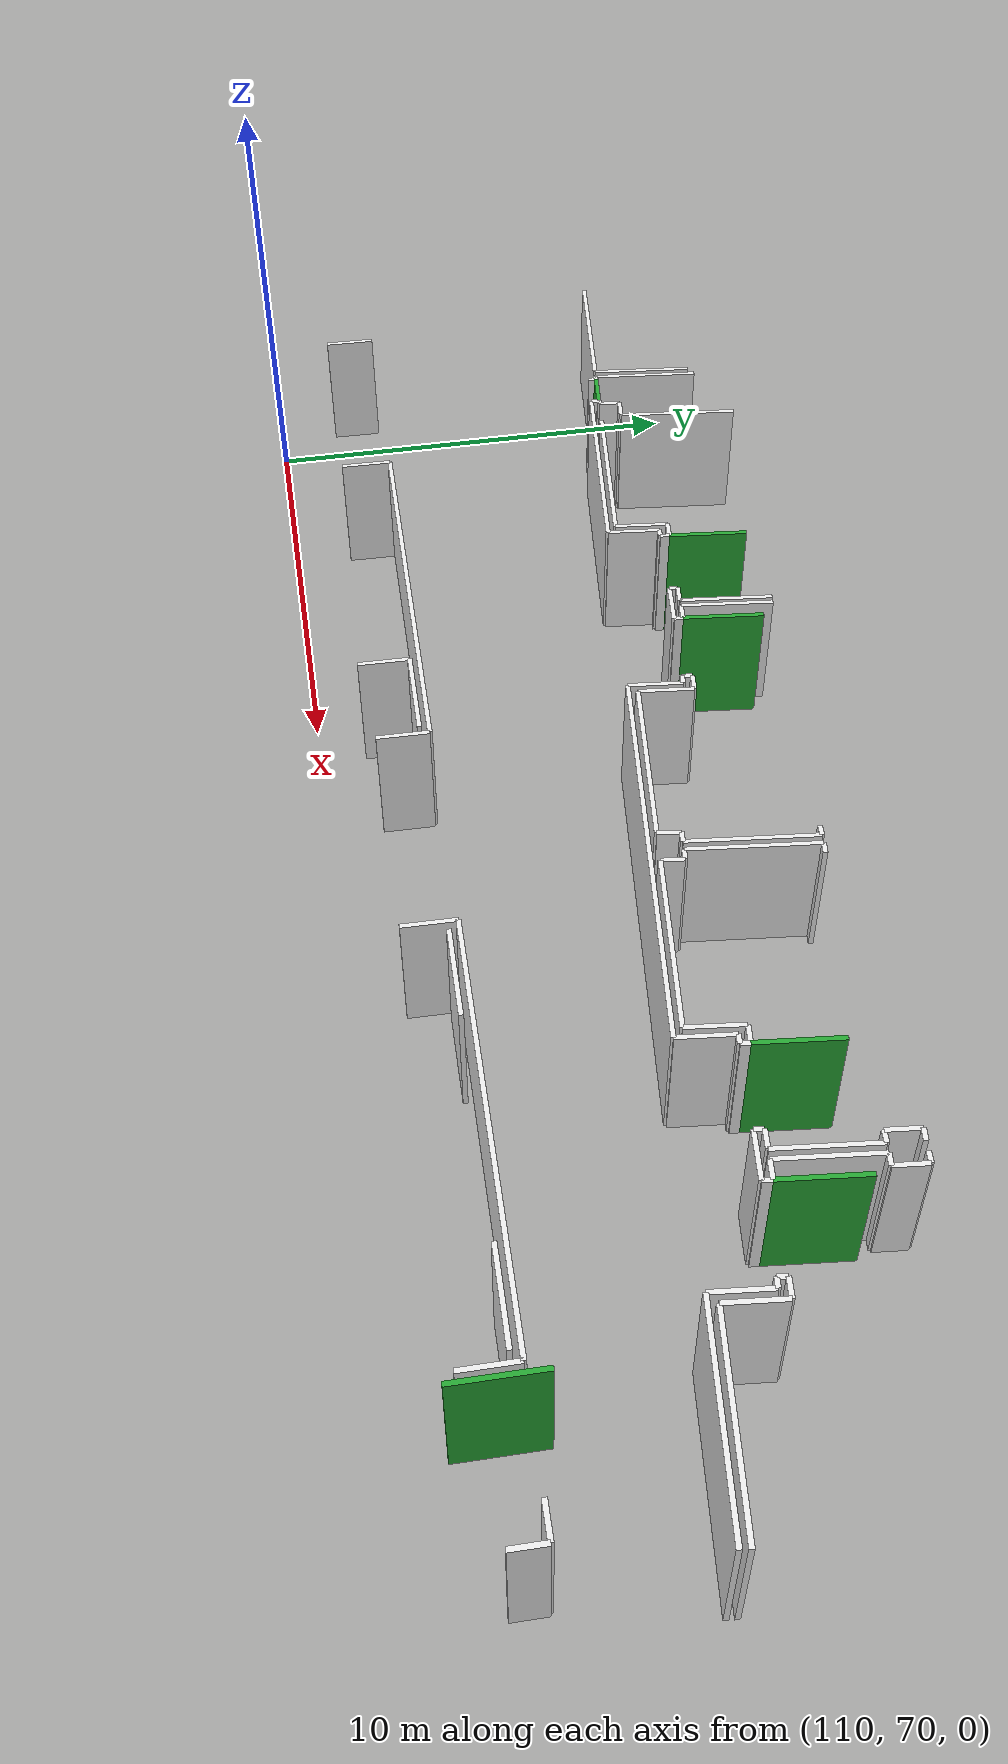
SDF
<sdf version="1.6">
 <world name="default">
  <model name="wall_134.7_77.8_1.5">
   <static>true</static>
   <pose>134.6899999998277 77.77499999990687 1.5 0 0 1.470574577181901</pose>
   <link name="link">
    <visual name="visual">
     <geometry><box><size>1.799027515083101 0.1 3</size></box></geometry>
     <material>
      <script><uri>file://media/materials/scripts/gazebo.material</uri><name>Gazebo/Green</name></script>
     </material>
    </visual>
    <collision name="collision"><geometry><box><size>1.799027515083101 0.1 3</size></box></geometry></collision>
   </link>
  </model>
  <model name="wall_131.9_78.1_1.5">
   <static>true</static>
   <pose>131.9000000000815 78.05500000016764 1.5 0 0 1.4705745769243592</pose>
   <link name="link">
    <visual name="visual">
     <geometry><box><size>1.7990275151296922 0.1 3</size></box></geometry>
     <material>
      <script><uri>file://media/materials/scripts/gazebo.material</uri><name>Gazebo/Green</name></script>
     </material>
    </visual>
    <collision name="collision"><geometry><box><size>1.7990275151296922 0.1 3</size></box></geometry></collision>
   </link>
  </model>
  <model name="wall_112.2_77.9_1.5">
   <static>true</static>
   <pose>112.1699999999837 77.92500000004657 1.5 0 0 -0.09966865283695012</pose>
   <link name="link">
    <visual name="visual">
     <geometry><box><size>0.9044888059555555 0.1 3</size></box></geometry>
     <material>
      <script><uri>file://media/materials/scripts/gazebo.material</uri><name>Gazebo/Green</name></script>
     </material>
    </visual>
    <collision name="collision"><geometry><box><size>0.9044888059555555 0.1 3</size></box></geometry></collision>
   </link>
  </model>
  <model name="wall_120.7_79.2_1.5">
   <static>true</static>
   <pose>120.72999999986496 79.1999999997206 1.5 0 0 1.4711276744574182</pose>
   <link name="link">
    <visual name="visual">
     <geometry><box><size>1.8089776115867657 0.1 3</size></box></geometry>
     <material>
      <script><uri>file://media/materials/scripts/gazebo.material</uri><name>Gazebo/Green</name></script>
     </material>
    </visual>
    <collision name="collision"><geometry><box><size>1.8089776115867657 0.1 3</size></box></geometry></collision>
   </link>
  </model>
  <model name="wall_118.0_79.5_1.5">
   <static>true</static>
   <pose>117.96999999985565 79.46499999985099 1.5 0 0 1.470574577181901</pose>
   <link name="link">
    <visual name="visual">
     <geometry><box><size>1.799027515083101 0.1 3</size></box></geometry>
     <material>
      <script><uri>file://media/materials/scripts/gazebo.material</uri><name>Gazebo/Green</name></script>
     </material>
    </visual>
    <collision name="collision"><geometry><box><size>1.799027515083101 0.1 3</size></box></geometry></collision>
   </link>
  </model>
  <model name="wall_137.3_71.7_1.5">
   <static>true</static>
   <pose>137.32000000000698 71.69500000006519 1.5 0 0 1.5597470527055792</pose>
   <link name="link">
    <visual name="visual">
     <geometry><box><size>1.8101104939210282 0.1 3</size></box></geometry>
     <material>
      <script><uri>file://media/materials/scripts/gazebo.material</uri><name>Gazebo/Green</name></script>
     </material>
    </visual>
    <collision name="collision"><geometry><box><size>1.8101104939210282 0.1 3</size></box></geometry></collision>
   </link>
  </model>
  <model name="wall_134.4_76.9_1.5">
   <static>true</static>
   <pose>134.39999999999418 76.89999999990687 1.5 0 0 3.0419240009977764</pose>
   <link name="link">
    <visual name="visual">
     <geometry><box><size>0.4019950248137912 0.1 3</size></box></geometry>
     <material>
      <script><uri>file://media/materials/scripts/gazebo.material</uri><name>Gazebo/White</name></script>
     </material>
    </visual>
    <collision name="collision"><geometry><box><size>0.4019950248137912 0.1 3</size></box></geometry></collision>
   </link>
  </model>
  <model name="wall_134.3_78.0_1.5">
   <static>true</static>
   <pose>134.30499999999302 77.95999999996275 1.5 0 0 1.4701757469590804</pose>
   <link name="link">
    <visual name="visual">
     <geometry><box><size>2.090574083904777 0.1 3</size></box></geometry>
     <material>
      <script><uri>file://media/materials/scripts/gazebo.material</uri><name>Gazebo/White</name></script>
     </material>
    </visual>
    <collision name="collision"><geometry><box><size>2.090574083904777 0.1 3</size></box></geometry></collision>
   </link>
  </model>
  <model name="wall_134.5_79.0_1.5">
   <static>true</static>
   <pose>134.5349999999744 78.98500000010245 1.5 0 0 -0.11942892521040878</pose>
   <link name="link">
    <visual name="visual">
     <geometry><box><size>0.2517935662158716 0.1 3</size></box></geometry>
     <material>
      <script><uri>file://media/materials/scripts/gazebo.material</uri><name>Gazebo/White</name></script>
     </material>
    </visual>
    <collision name="collision"><geometry><box><size>0.2517935662158716 0.1 3</size></box></geometry></collision>
   </link>
  </model>
  <model name="wall_134.7_79.3_1.5">
   <static>true</static>
   <pose>134.69499999997788 79.32000000006519 1.5 0 0 1.4711276742543362</pose>
   <link name="link">
    <visual name="visual">
     <geometry><box><size>0.7034912932011471 0.1 3</size></box></geometry>
     <material>
      <script><uri>file://media/materials/scripts/gazebo.material</uri><name>Gazebo/White</name></script>
     </material>
    </visual>
    <collision name="collision"><geometry><box><size>0.7034912932011471 0.1 3</size></box></geometry></collision>
   </link>
  </model>
  <model name="wall_134.6_79.7_1.5">
   <static>true</static>
   <pose>134.60999999998603 79.67999999993481 1.5 0 0 3.0584514216210654</pose>
   <link name="link">
    <visual name="visual">
     <geometry><box><size>0.2408318915681117 0.1 3</size></box></geometry>
     <material>
      <script><uri>file://media/materials/scripts/gazebo.material</uri><name>Gazebo/White</name></script>
     </material>
    </visual>
    <collision name="collision"><geometry><box><size>0.2408318915681117 0.1 3</size></box></geometry></collision>
   </link>
  </model>
  <model name="wall_138.6_75.3_1.5">
   <static>true</static>
   <pose>138.63999999998487 75.26000000000931 1.5 0 0 3.0404164645756886</pose>
   <link name="link">
    <visual name="visual">
     <geometry><box><size>3.9602525171943066 0.1 3</size></box></geometry>
     <material>
      <script><uri>file://media/materials/scripts/gazebo.material</uri><name>Gazebo/White</name></script>
     </material>
    </visual>
    <collision name="collision"><geometry><box><size>3.9602525171943066 0.1 3</size></box></geometry></collision>
   </link>
  </model>
  <model name="wall_136.7_76.1_1.5">
   <static>true</static>
   <pose>136.72999999998137 76.06000000005588 1.5 0 0 1.4711276743229451</pose>
   <link name="link">
    <visual name="visual">
     <geometry><box><size>1.2059850747193837 0.1 3</size></box></geometry>
     <material>
      <script><uri>file://media/materials/scripts/gazebo.material</uri><name>Gazebo/White</name></script>
     </material>
    </visual>
    <collision name="collision"><geometry><box><size>1.2059850747193837 0.1 3</size></box></geometry></collision>
   </link>
  </model>
  <model name="wall_136.6_76.7_1.5">
   <static>true</static>
   <pose>136.5899999999965 76.68000000016764 1.5 0 0 3.0419240009977764</pose>
   <link name="link">
    <visual name="visual">
     <geometry><box><size>0.4019950248137912 0.1 3</size></box></geometry>
     <material>
      <script><uri>file://media/materials/scripts/gazebo.material</uri><name>Gazebo/White</name></script>
     </material>
    </visual>
    <collision name="collision"><geometry><box><size>0.4019950248137912 0.1 3</size></box></geometry></collision>
   </link>
  </model>
  <model name="wall_133.8_77.0_1.5">
   <static>true</static>
   <pose>133.79999999998836 76.95999999996275 1.5 0 0 -0.09966865257760905</pose>
   <link name="link">
    <visual name="visual">
     <geometry><box><size>0.40199502487170996 0.1 3</size></box></geometry>
     <material>
      <script><uri>file://media/materials/scripts/gazebo.material</uri><name>Gazebo/White</name></script>
     </material>
    </visual>
    <collision name="collision"><geometry><box><size>0.40199502487170996 0.1 3</size></box></geometry></collision>
   </link>
  </model>
  <model name="wall_134.1_78.0_1.5">
   <static>true</static>
   <pose>134.10500000001048 77.97999999998137 1.5 0 0 1.4701757469313783</pose>
   <link name="link">
    <visual name="visual">
     <geometry><box><size>2.0905740839106244 0.1 3</size></box></geometry>
     <material>
      <script><uri>file://media/materials/scripts/gazebo.material</uri><name>Gazebo/White</name></script>
     </material>
    </visual>
    <collision name="collision"><geometry><box><size>2.0905740839106244 0.1 3</size></box></geometry></collision>
   </link>
  </model>
  <model name="wall_134.1_79.0_1.5">
   <static>true</static>
   <pose>134.08500000002095 79.03000000002794 1.5 0 0 3.061762667803524</pose>
   <link name="link">
    <visual name="visual">
     <geometry><box><size>0.25079872408117443 0.1 3</size></box></geometry>
     <material>
      <script><uri>file://media/materials/scripts/gazebo.material</uri><name>Gazebo/White</name></script>
     </material>
    </visual>
    <collision name="collision"><geometry><box><size>0.25079872408117443 0.1 3</size></box></geometry></collision>
   </link>
  </model>
  <model name="wall_134.0_79.4_1.5">
   <static>true</static>
   <pose>133.99500000002445 79.39000000013039 1.5 0 0 1.4711276743202006</pose>
   <link name="link">
    <visual name="visual">
     <geometry><box><size>0.7034912936644975 0.1 3</size></box></geometry>
     <material>
      <script><uri>file://media/materials/scripts/gazebo.material</uri><name>Gazebo/White</name></script>
     </material>
    </visual>
    <collision name="collision"><geometry><box><size>0.7034912936644975 0.1 3</size></box></geometry></collision>
   </link>
  </model>
  <model name="wall_134.2_79.7_1.5">
   <static>true</static>
   <pose>134.15500000002794 79.72500000009313 1.5 0 0 -0.11942892704661259</pose>
   <link name="link">
    <visual name="visual">
     <geometry><box><size>0.25179356627135296 0.1 3</size></box></geometry>
     <material>
      <script><uri>file://media/materials/scripts/gazebo.material</uri><name>Gazebo/White</name></script>
     </material>
    </visual>
    <collision name="collision"><geometry><box><size>0.25179356627135296 0.1 3</size></box></geometry></collision>
   </link>
  </model>
  <model name="wall_127.6_79.7_1.5">
   <static>true</static>
   <pose>127.55499999999302 79.68500000005588 1.5 0 0 3.0221637265431807</pose>
   <link name="link">
    <visual name="visual">
     <geometry><box><size>0.25179356627135296 0.1 3</size></box></geometry>
     <material>
      <script><uri>file://media/materials/scripts/gazebo.material</uri><name>Gazebo/White</name></script>
     </material>
    </visual>
    <collision name="collision"><geometry><box><size>0.25179356627135296 0.1 3</size></box></geometry></collision>
   </link>
  </model>
  <model name="wall_127.3_78.3_1.5">
   <static>true</static>
   <pose>127.29000000000815 78.31000000005588 1.5 0 0 -1.6711772298577363</pose>
   <link name="link">
    <visual name="visual">
     <geometry><box><size>2.7940651390819315 0.1 3</size></box></geometry>
     <material>
      <script><uri>file://media/materials/scripts/gazebo.material</uri><name>Gazebo/White</name></script>
     </material>
    </visual>
    <collision name="collision"><geometry><box><size>2.7940651390819315 0.1 3</size></box></geometry></collision>
   </link>
  </model>
  <model name="wall_127.3_76.9_1.5">
   <static>true</static>
   <pose>127.27500000002328 76.90500000002794 1.5 0 0 -0.11942892521040878</pose>
   <link name="link">
    <visual name="visual">
     <geometry><box><size>0.2517935662158716 0.1 3</size></box></geometry>
     <material>
      <script><uri>file://media/materials/scripts/gazebo.material</uri><name>Gazebo/White</name></script>
     </material>
    </visual>
    <collision name="collision"><geometry><box><size>0.2517935662158716 0.1 3</size></box></geometry></collision>
   </link>
  </model>
  <model name="wall_127.4_76.6_1.5">
   <static>true</static>
   <pose>127.375 76.64500000001863 1.5 0 0 -1.6724851786059602</pose>
   <link name="link">
    <visual name="visual">
     <geometry><box><size>0.4925444144680799 0.1 3</size></box></geometry>
     <material>
      <script><uri>file://media/materials/scripts/gazebo.material</uri><name>Gazebo/White</name></script>
     </material>
    </visual>
    <collision name="collision"><geometry><box><size>0.4925444144680799 0.1 3</size></box></geometry></collision>
   </link>
  </model>
  <model name="wall_129.3_76.2_1.5">
   <static>true</static>
   <pose>129.31500000000233 76.19999999995343 1.5 0 0 -0.10143187482049365</pose>
   <link name="link">
    <visual name="visual">
     <geometry><box><size>3.9503037858281362 0.1 3</size></box></geometry>
     <material>
      <script><uri>file://media/materials/scripts/gazebo.material</uri><name>Gazebo/White</name></script>
     </material>
    </visual>
    <collision name="collision"><geometry><box><size>3.9503037858281362 0.1 3</size></box></geometry></collision>
   </link>
  </model>
  <model name="wall_131.3_76.6_1.5">
   <static>true</static>
   <pose>131.34500000000116 76.60000000009313 1.5 0 0 1.4628838380389488</pose>
   <link name="link">
    <visual name="visual">
     <geometry><box><size>1.2070211267550837 0.1 3</size></box></geometry>
     <material>
      <script><uri>file://media/materials/scripts/gazebo.material</uri><name>Gazebo/White</name></script>
     </material>
    </visual>
    <collision name="collision"><geometry><box><size>1.2070211267550837 0.1 3</size></box></geometry></collision>
   </link>
  </model>
  <model name="wall_131.6_77.2_1.5">
   <static>true</static>
   <pose>131.60999999998603 77.18000000016764 1.5 0 0 -0.09966865257760905</pose>
   <link name="link">
    <visual name="visual">
     <geometry><box><size>0.40199502487170996 0.1 3</size></box></geometry>
     <material>
      <script><uri>file://media/materials/scripts/gazebo.material</uri><name>Gazebo/White</name></script>
     </material>
    </visual>
    <collision name="collision"><geometry><box><size>0.40199502487170996 0.1 3</size></box></geometry></collision>
   </link>
  </model>
  <model name="wall_113.4_79.7_1.5">
   <static>true</static>
   <pose>113.40499999999884 79.70999999996275 1.5 0 0 1.4668557173961834</pose>
   <link name="link">
    <visual name="visual">
     <geometry><box><size>2.7950849721319257 0.1 3</size></box></geometry>
     <material>
      <script><uri>file://media/materials/scripts/gazebo.material</uri><name>Gazebo/White</name></script>
     </material>
    </visual>
    <collision name="collision"><geometry><box><size>2.7950849721319257 0.1 3</size></box></geometry></collision>
   </link>
  </model>
  <model name="wall_111.7_79.2_1.5">
   <static>true</static>
   <pose>111.74499999999534 79.22500000009313 1.5 0 0 -1.6708625935702974</pose>
   <link name="link">
    <visual name="visual">
     <geometry><box><size>2.502518731421029 0.1 3</size></box></geometry>
     <material>
      <script><uri>file://media/materials/scripts/gazebo.material</uri><name>Gazebo/White</name></script>
     </material>
    </visual>
    <collision name="collision"><geometry><box><size>2.502518731421029 0.1 3</size></box></geometry></collision>
   </link>
  </model>
  <model name="wall_111.7_78.0_1.5">
   <static>true</static>
   <pose>111.6699999999837 77.97500000009313 1.5 0 0 -0.09966865030117082</pose>
   <link name="link">
    <visual name="visual">
     <geometry><box><size>0.10049875616580058 0.1 3</size></box></geometry>
     <material>
      <script><uri>file://media/materials/scripts/gazebo.material</uri><name>Gazebo/White</name></script>
     </material>
    </visual>
    <collision name="collision"><geometry><box><size>0.10049875616580058 0.1 3</size></box></geometry></collision>
   </link>
  </model>
  <model name="wall_112.7_77.9_1.5">
   <static>true</static>
   <pose>112.6699999999837 77.875 1.5 0 0 -0.09966865030117082</pose>
   <link name="link">
    <visual name="visual">
     <geometry><box><size>0.10049875616580058 0.1 3</size></box></geometry>
     <material>
      <script><uri>file://media/materials/scripts/gazebo.material</uri><name>Gazebo/White</name></script>
     </material>
    </visual>
    <collision name="collision"><geometry><box><size>0.10049875616580058 0.1 3</size></box></geometry></collision>
   </link>
  </model>
  <model name="wall_112.7_78.1_1.5">
   <static>true</static>
   <pose>112.74499999999534 78.12000000011176 1.5 0 0 1.4711276742115245</pose>
   <link name="link">
    <visual name="visual">
     <geometry><box><size>0.502493781060678 0.1 3</size></box></geometry>
     <material>
      <script><uri>file://media/materials/scripts/gazebo.material</uri><name>Gazebo/White</name></script>
     </material>
    </visual>
    <collision name="collision"><geometry><box><size>0.502493781060678 0.1 3</size></box></geometry></collision>
   </link>
  </model>
  <model name="wall_113.0_78.3_1.5">
   <static>true</static>
   <pose>113.01500000001397 78.34499999997206 1.5 0 0 -0.1016888523293181</pose>
   <link name="link">
    <visual name="visual">
     <geometry><box><size>0.49254441426008755 0.1 3</size></box></geometry>
     <material>
      <script><uri>file://media/materials/scripts/gazebo.material</uri><name>Gazebo/White</name></script>
     </material>
    </visual>
    <collision name="collision"><geometry><box><size>0.49254441426008755 0.1 3</size></box></geometry></collision>
   </link>
  </model>
  <model name="wall_109.6_78.2_1.5">
   <static>true</static>
   <pose>109.61999999999534 78.17999999993481 1.5 0 0 -0.1002217497450038</pose>
   <link name="link">
    <visual name="visual">
     <geometry><box><size>3.5980550300969623 0.1 3</size></box></geometry>
     <material>
      <script><uri>file://media/materials/scripts/gazebo.material</uri><name>Gazebo/White</name></script>
     </material>
    </visual>
    <collision name="collision"><geometry><box><size>3.5980550300969623 0.1 3</size></box></geometry></collision>
   </link>
  </model>
  <model name="wall_111.5_79.2_1.5">
   <static>true</static>
   <pose>111.52999999999884 79.1699999999255 1.5 0 0 1.4685896086605021</pose>
   <link name="link">
    <visual name="visual">
     <geometry><box><size>2.3522754939262738 0.1 3</size></box></geometry>
     <material>
      <script><uri>file://media/materials/scripts/gazebo.material</uri><name>Gazebo/White</name></script>
     </material>
    </visual>
    <collision name="collision"><geometry><box><size>2.3522754939262738 0.1 3</size></box></geometry></collision>
   </link>
  </model>
  <model name="wall_120.4_78.3_1.5">
   <static>true</static>
   <pose>120.44000000000233 78.31999999983236 1.5 0 0 -0.09966865257760905</pose>
   <link name="link">
    <visual name="visual">
     <geometry><box><size>0.40199502487170996 0.1 3</size></box></geometry>
     <material>
      <script><uri>file://media/materials/scripts/gazebo.material</uri><name>Gazebo/White</name></script>
     </material>
    </visual>
    <collision name="collision"><geometry><box><size>0.40199502487170996 0.1 3</size></box></geometry></collision>
   </link>
  </model>
  <model name="wall_122.6_78.1_1.5">
   <static>true</static>
   <pose>122.63500000000931 78.10000000009313 1.5 0 0 -0.10220671819814384</pose>
   <link name="link">
    <visual name="visual">
     <geometry><box><size>0.392045915695951 0.1 3</size></box></geometry>
     <material>
      <script><uri>file://media/materials/scripts/gazebo.material</uri><name>Gazebo/White</name></script>
     </material>
    </visual>
    <collision name="collision"><geometry><box><size>0.392045915695951 0.1 3</size></box></geometry></collision>
   </link>
  </model>
  <model name="wall_122.8_77.5_1.5">
   <static>true</static>
   <pose>122.77000000001863 77.47500000009313 1.5 0 0 -1.6696466488623756</pose>
   <link name="link">
    <visual name="visual">
     <geometry><box><size>1.2159358535337013 0.1 3</size></box></geometry>
     <material>
      <script><uri>file://media/materials/scripts/gazebo.material</uri><name>Gazebo/White</name></script>
     </material>
    </visual>
    <collision name="collision"><geometry><box><size>1.2159358535337013 0.1 3</size></box></geometry></collision>
   </link>
  </model>
  <model name="wall_124.7_76.7_1.5">
   <static>true</static>
   <pose>124.68000000002212 76.67000000015832 1.5 0 0 -0.10117618901410476</pose>
   <link name="link">
    <visual name="visual">
     <geometry><box><size>3.9602525171943066 0.1 3</size></box></geometry>
     <material>
      <script><uri>file://media/materials/scripts/gazebo.material</uri><name>Gazebo/White</name></script>
     </material>
    </visual>
    <collision name="collision"><geometry><box><size>3.9602525171943066 0.1 3</size></box></geometry></collision>
   </link>
  </model>
  <model name="wall_126.7_76.7_1.5">
   <static>true</static>
   <pose>126.68000000002212 76.72000000020489 1.5 0 0 1.4513674007811488</pose>
   <link name="link">
    <visual name="visual">
     <geometry><box><size>0.5035871324802894 0.1 3</size></box></geometry>
     <material>
      <script><uri>file://media/materials/scripts/gazebo.material</uri><name>Gazebo/White</name></script>
     </material>
    </visual>
    <collision name="collision"><geometry><box><size>0.5035871324802894 0.1 3</size></box></geometry></collision>
   </link>
  </model>
  <model name="wall_126.8_77.0_1.5">
   <static>true</static>
   <pose>126.8300000000163 76.9550000000745 1.5 0 0 -0.1243549956213644</pose>
   <link name="link">
    <visual name="visual">
     <geometry><box><size>0.24186773247205975 0.1 3</size></box></geometry>
     <material>
      <script><uri>file://media/materials/scripts/gazebo.material</uri><name>Gazebo/White</name></script>
     </material>
    </visual>
    <collision name="collision"><geometry><box><size>0.24186773247205975 0.1 3</size></box></geometry></collision>
   </link>
  </model>
  <model name="wall_127.1_78.3_1.5">
   <static>true</static>
   <pose>127.08999999999651 78.3300000000745 1.5 0 0 1.470415423732057</pose>
   <link name="link">
    <visual name="visual">
     <geometry><box><size>2.7940651390819315 0.1 3</size></box></geometry>
     <material>
      <script><uri>file://media/materials/scripts/gazebo.material</uri><name>Gazebo/White</name></script>
     </material>
    </visual>
    <collision name="collision"><geometry><box><size>2.7940651390819315 0.1 3</size></box></geometry></collision>
   </link>
  </model>
  <model name="wall_127.1_79.7_1.5">
   <static>true</static>
   <pose>127.10999999998603 79.7300000002142 1.5 0 0 3.0584514216210654</pose>
   <link name="link">
    <visual name="visual">
     <geometry><box><size>0.2408318915681117 0.1 3</size></box></geometry>
     <material>
      <script><uri>file://media/materials/scripts/gazebo.material</uri><name>Gazebo/White</name></script>
     </material>
    </visual>
    <collision name="collision"><geometry><box><size>0.2408318915681117 0.1 3</size></box></geometry></collision>
   </link>
  </model>
  <model name="wall_120.3_79.4_1.5">
   <static>true</static>
   <pose>120.34500000000116 79.36999999987893 1.5 0 0 -1.672387129737302</pose>
   <link name="link">
    <visual name="visual">
     <geometry><box><size>2.070676218108235 0.1 3</size></box></geometry>
     <material>
      <script><uri>file://media/materials/scripts/gazebo.material</uri><name>Gazebo/White</name></script>
     </material>
    </visual>
    <collision name="collision"><geometry><box><size>2.070676218108235 0.1 3</size></box></geometry></collision>
   </link>
  </model>
  <model name="wall_119.9_78.4_1.5">
   <static>true</static>
   <pose>119.86999999999534 78.37000000011176 1.5 0 0 -0.09966865257760905</pose>
   <link name="link">
    <visual name="visual">
     <geometry><box><size>0.40199502487170996 0.1 3</size></box></geometry>
     <material>
      <script><uri>file://media/materials/scripts/gazebo.material</uri><name>Gazebo/White</name></script>
     </material>
    </visual>
    <collision name="collision"><geometry><box><size>0.40199502487170996 0.1 3</size></box></geometry></collision>
   </link>
  </model>
  <model name="wall_120.2_79.4_1.5">
   <static>true</static>
   <pose>120.17500000001746 79.38500000000931 1.5 0 0 1.469692955040446</pose>
   <link name="link">
    <visual name="visual">
     <geometry><box><size>2.0806249059632975 0.1 3</size></box></geometry>
     <material>
      <script><uri>file://media/materials/scripts/gazebo.material</uri><name>Gazebo/White</name></script>
     </material>
    </visual>
    <collision name="collision"><geometry><box><size>2.0806249059632975 0.1 3</size></box></geometry></collision>
   </link>
  </model>
  <model name="wall_115.4_77.6_1.5">
   <static>true</static>
   <pose>115.38499999998021 77.5999999998603 1.5 0 0 -0.10092178464365997</pose>
   <link name="link">
    <visual name="visual">
     <geometry><box><size>3.9702015062232627 0.1 3</size></box></geometry>
     <material>
      <script><uri>file://media/materials/scripts/gazebo.material</uri><name>Gazebo/White</name></script>
     </material>
    </visual>
    <collision name="collision"><geometry><box><size>3.9702015062232627 0.1 3</size></box></geometry></collision>
   </link>
  </model>
  <model name="wall_117.4_78.0_1.5">
   <static>true</static>
   <pose>117.4199999999837 78.00499999988824 1.5 0 0 1.4719460047274175</pose>
   <link name="link">
    <visual name="visual">
     <geometry><box><size>1.2159358535337013 0.1 3</size></box></geometry>
     <material>
      <script><uri>file://media/materials/scripts/gazebo.material</uri><name>Gazebo/White</name></script>
     </material>
    </visual>
    <collision name="collision"><geometry><box><size>1.2159358535337013 0.1 3</size></box></geometry></collision>
   </link>
  </model>
  <model name="wall_117.7_78.6_1.5">
   <static>true</static>
   <pose>117.67999999999302 78.58999999985099 1.5 0 0 -0.09966865257760905</pose>
   <link name="link">
    <visual name="visual">
     <geometry><box><size>0.40199502487170996 0.1 3</size></box></geometry>
     <material>
      <script><uri>file://media/materials/scripts/gazebo.material</uri><name>Gazebo/White</name></script>
     </material>
    </visual>
    <collision name="collision"><geometry><box><size>0.40199502487170996 0.1 3</size></box></geometry></collision>
   </link>
  </model>
  <model name="wall_138.5_75.1_1.5">
   <static>true</static>
   <pose>138.52000000001863 75.07499999995343 1.5 0 0 3.0428807098041264</pose>
   <link name="link">
    <visual name="visual">
     <geometry><box><size>4.1602523961721385 0.1 3</size></box></geometry>
     <material>
      <script><uri>file://media/materials/scripts/gazebo.material</uri><name>Gazebo/White</name></script>
     </material>
    </visual>
    <collision name="collision"><geometry><box><size>4.1602523961721385 0.1 3</size></box></geometry></collision>
   </link>
  </model>
  <model name="wall_136.5_75.9_1.5">
   <static>true</static>
   <pose>136.5100000000093 75.87999999988824 1.5 0 0 1.4711276743229451</pose>
   <link name="link">
    <visual name="visual">
     <geometry><box><size>1.2059850747193837 0.1 3</size></box></geometry>
     <material>
      <script><uri>file://media/materials/scripts/gazebo.material</uri><name>Gazebo/White</name></script>
     </material>
    </visual>
    <collision name="collision"><geometry><box><size>1.2059850747193837 0.1 3</size></box></geometry></collision>
   </link>
  </model>
  <model name="wall_136.5_76.5_1.5">
   <static>true</static>
   <pose>136.47000000000116 76.48999999999069 1.5 0 0 3.0419240010121844</pose>
   <link name="link">
    <visual name="visual">
     <geometry><box><size>0.20099751243585498 0.1 3</size></box></geometry>
     <material>
      <script><uri>file://media/materials/scripts/gazebo.material</uri><name>Gazebo/White</name></script>
     </material>
    </visual>
    <collision name="collision"><geometry><box><size>0.20099751243585498 0.1 3</size></box></geometry></collision>
   </link>
  </model>
  <model name="wall_136.4_76.6_1.5">
   <static>true</static>
   <pose>136.38000000000466 76.60000000009313 1.5 0 0 1.4711276743037347</pose>
   <link name="link">
    <visual name="visual">
     <geometry><box><size>0.20099751260961132 0.1 3</size></box></geometry>
     <material>
      <script><uri>file://media/materials/scripts/gazebo.material</uri><name>Gazebo/White</name></script>
     </material>
    </visual>
    <collision name="collision"><geometry><box><size>0.20099751260961132 0.1 3</size></box></geometry></collision>
   </link>
  </model>
  <model name="wall_134.6_76.8_1.5">
   <static>true</static>
   <pose>134.5899999999965 76.78000000002794 1.5 0 0 -1.6704649792284274</pose>
   <link name="link">
    <visual name="visual">
     <geometry><box><size>0.20099751214046915 0.1 3</size></box></geometry>
     <material>
      <script><uri>file://media/materials/scripts/gazebo.material</uri><name>Gazebo/White</name></script>
     </material>
    </visual>
    <collision name="collision"><geometry><box><size>0.20099751214046915 0.1 3</size></box></geometry></collision>
   </link>
  </model>
  <model name="wall_134.1_76.7_1.5">
   <static>true</static>
   <pose>134.0800000000163 76.72999999998137 1.5 0 0 3.0419240014674718</pose>
   <link name="link">
    <visual name="visual">
     <geometry><box><size>1.004987562075021 0.1 3</size></box></geometry>
     <material>
      <script><uri>file://media/materials/scripts/gazebo.material</uri><name>Gazebo/White</name></script>
     </material>
    </visual>
    <collision name="collision"><geometry><box><size>1.004987562075021 0.1 3</size></box></geometry></collision>
   </link>
  </model>
  <model name="wall_133.6_76.9_1.5">
   <static>true</static>
   <pose>133.5899999999965 76.87999999988824 1.5 0 0 1.4711276745918913</pose>
   <link name="link">
    <visual name="visual">
     <geometry><box><size>0.20099751260381943 0.1 3</size></box></geometry>
     <material>
      <script><uri>file://media/materials/scripts/gazebo.material</uri><name>Gazebo/White</name></script>
     </material>
    </visual>
    <collision name="collision"><geometry><box><size>0.20099751260381943 0.1 3</size></box></geometry></collision>
   </link>
  </model>
  <model name="wall_131.8_77.1_1.5">
   <static>true</static>
   <pose>131.79999999998836 77.06000000005588 1.5 0 0 -1.6704649792860586</pose>
   <link name="link">
    <visual name="visual">
     <geometry><box><size>0.20099751260961132 0.1 3</size></box></geometry>
     <material>
      <script><uri>file://media/materials/scripts/gazebo.material</uri><name>Gazebo/White</name></script>
     </material>
    </visual>
    <collision name="collision"><geometry><box><size>0.20099751260961132 0.1 3</size></box></geometry></collision>
   </link>
  </model>
  <model name="wall_131.7_77.0_1.5">
   <static>true</static>
   <pose>131.69000000000233 76.96999999997206 1.5 0 0 3.0419240009833683</pose>
   <link name="link">
    <visual name="visual">
     <geometry><box><size>0.20099751237793617 0.1 3</size></box></geometry>
     <material>
      <script><uri>file://media/materials/scripts/gazebo.material</uri><name>Gazebo/White</name></script>
     </material>
    </visual>
    <collision name="collision"><geometry><box><size>0.20099751237793617 0.1 3</size></box></geometry></collision>
   </link>
  </model>
  <model name="wall_131.5_76.4_1.5">
   <static>true</static>
   <pose>131.52999999999884 76.38500000000931 1.5 0 0 -1.6712969258987618</pose>
   <link name="link">
    <visual name="visual">
     <geometry><box><size>1.1960351164910918 0.1 3</size></box></geometry>
     <material>
      <script><uri>file://media/materials/scripts/gazebo.material</uri><name>Gazebo/White</name></script>
     </material>
    </visual>
    <collision name="collision"><geometry><box><size>1.1960351164910918 0.1 3</size></box></geometry></collision>
   </link>
  </model>
  <model name="wall_127.0_76.2_1.5">
   <static>true</static>
   <pose>126.98499999998603 76.23999999999069 1.5 0 0 3.0415928752928885</pose>
   <link name="link">
    <visual name="visual">
     <geometry><box><size>9.01503743748916 0.1 3</size></box></geometry>
     <material>
      <script><uri>file://media/materials/scripts/gazebo.material</uri><name>Gazebo/White</name></script>
     </material>
    </visual>
    <collision name="collision"><geometry><box><size>9.01503743748916 0.1 3</size></box></geometry></collision>
   </link>
  </model>
  <model name="wall_122.6_77.3_1.5">
   <static>true</static>
   <pose>122.55999999999767 77.28499999991618 1.5 0 0 1.470295727739453</pose>
   <link name="link">
    <visual name="visual">
     <geometry><box><size>1.1960351164852516 0.1 3</size></box></geometry>
     <material>
      <script><uri>file://media/materials/scripts/gazebo.material</uri><name>Gazebo/White</name></script>
     </material>
    </visual>
    <collision name="collision"><geometry><box><size>1.1960351164852516 0.1 3</size></box></geometry></collision>
   </link>
  </model>
  <model name="wall_122.5_77.9_1.5">
   <static>true</static>
   <pose>122.51499999998487 77.88999999989755 1.5 0 0 3.0466409471685547</pose>
   <link name="link">
    <visual name="visual">
     <geometry><box><size>0.21095023111991618 0.1 3</size></box></geometry>
     <material>
      <script><uri>file://media/materials/scripts/gazebo.material</uri><name>Gazebo/White</name></script>
     </material>
    </visual>
    <collision name="collision"><geometry><box><size>0.21095023111991618 0.1 3</size></box></geometry></collision>
   </link>
  </model>
  <model name="wall_122.4_78.0_1.5">
   <static>true</static>
   <pose>122.42499999998836 78.01000000000931 1.5 0 0 1.4352686128093959</pose>
   <link name="link">
    <visual name="visual">
     <geometry><box><size>0.22203603331853233 0.1 3</size></box></geometry>
     <material>
      <script><uri>file://media/materials/scripts/gazebo.material</uri><name>Gazebo/White</name></script>
     </material>
    </visual>
    <collision name="collision"><geometry><box><size>0.22203603331853233 0.1 3</size></box></geometry></collision>
   </link>
  </model>
  <model name="wall_120.6_78.2_1.5">
   <static>true</static>
   <pose>120.64000000001397 78.19999999995343 1.5 0 0 -1.5707963267948966</pose>
   <link name="link">
    <visual name="visual">
     <geometry><box><size>0.19999999972060323 0.1 3</size></box></geometry>
     <material>
      <script><uri>file://media/materials/scripts/gazebo.material</uri><name>Gazebo/White</name></script>
     </material>
    </visual>
    <collision name="collision"><geometry><box><size>0.19999999972060323 0.1 3</size></box></geometry></collision>
   </link>
  </model>
  <model name="wall_120.1_78.2_1.5">
   <static>true</static>
   <pose>120.14500000001863 78.1500000001397 1.5 0 0 3.040924001337901</pose>
   <link name="link">
    <visual name="visual">
     <geometry><box><size>0.9950376877285535 0.1 3</size></box></geometry>
     <material>
      <script><uri>file://media/materials/scripts/gazebo.material</uri><name>Gazebo/White</name></script>
     </material>
    </visual>
    <collision name="collision"><geometry><box><size>0.9950376877285535 0.1 3</size></box></geometry></collision>
   </link>
  </model>
  <model name="wall_119.7_78.3_1.5">
   <static>true</static>
   <pose>119.66000000000349 78.29500000015832 1.5 0 0 1.4659193882400832</pose>
   <link name="link">
    <visual name="visual">
     <geometry><box><size>0.19104973168571213 0.1 3</size></box></geometry>
     <material>
      <script><uri>file://media/materials/scripts/gazebo.material</uri><name>Gazebo/White</name></script>
     </material>
    </visual>
    <collision name="collision"><geometry><box><size>0.19104973168571213 0.1 3</size></box></geometry></collision>
   </link>
  </model>
  <model name="wall_117.9_78.5_1.5">
   <static>true</static>
   <pose>117.86999999999534 78.46499999985099 1.5 0 0 -1.665748033242296</pose>
   <link name="link">
    <visual name="visual">
     <geometry><box><size>0.21095023106197072 0.1 3</size></box></geometry>
     <material>
      <script><uri>file://media/materials/scripts/gazebo.material</uri><name>Gazebo/White</name></script>
     </material>
    </visual>
    <collision name="collision"><geometry><box><size>0.21095023106197072 0.1 3</size></box></geometry></collision>
   </link>
  </model>
  <model name="wall_117.8_78.4_1.5">
   <static>true</static>
   <pose>117.75999999998021 78.36999999987893 1.5 0 0 3.0419240010121844</pose>
   <link name="link">
    <visual name="visual">
     <geometry><box><size>0.20099751243585498 0.1 3</size></box></geometry>
     <material>
      <script><uri>file://media/materials/scripts/gazebo.material</uri><name>Gazebo/White</name></script>
     </material>
    </visual>
    <collision name="collision"><geometry><box><size>0.20099751243585498 0.1 3</size></box></geometry></collision>
   </link>
  </model>
  <model name="wall_117.6_77.8_1.5">
   <static>true</static>
   <pose>117.59999999997672 77.78499999991618 1.5 0 0 -1.6712969258503403</pose>
   <link name="link">
    <visual name="visual">
     <geometry><box><size>1.1960351164852516 0.1 3</size></box></geometry>
     <material>
      <script><uri>file://media/materials/scripts/gazebo.material</uri><name>Gazebo/White</name></script>
     </material>
    </visual>
    <collision name="collision"><geometry><box><size>1.1960351164852516 0.1 3</size></box></geometry></collision>
   </link>
  </model>
  <model name="wall_115.1_77.4_1.5">
   <static>true</static>
   <pose>115.06999999997788 77.43999999994412 1.5 0 0 3.0407215968685284</pose>
   <link name="link">
    <visual name="visual">
     <geometry><box><size>4.965239168461375 0.1 3</size></box></geometry>
     <material>
      <script><uri>file://media/materials/scripts/gazebo.material</uri><name>Gazebo/White</name></script>
     </material>
    </visual>
    <collision name="collision"><geometry><box><size>4.965239168461375 0.1 3</size></box></geometry></collision>
   </link>
  </model>
  <model name="wall_112.6_77.8_1.5">
   <static>true</static>
   <pose>112.60999999998603 77.78499999991618 1.5 0 0 1.4659193879370842</pose>
   <link name="link">
    <visual name="visual">
     <geometry><box><size>0.19104973169180559 0.1 3</size></box></geometry>
     <material>
      <script><uri>file://media/materials/scripts/gazebo.material</uri><name>Gazebo/White</name></script>
     </material>
    </visual>
    <collision name="collision"><geometry><box><size>0.19104973169180559 0.1 3</size></box></geometry></collision>
   </link>
  </model>
  <model name="wall_111.7_77.9_1.5">
   <static>true</static>
   <pose>111.70999999999185 77.875 1.5 0 0 -1.6756732650945534</pose>
   <link name="link">
    <visual name="visual">
     <geometry><box><size>0.19104973214881482 0.1 3</size></box></geometry>
     <material>
      <script><uri>file://media/materials/scripts/gazebo.material</uri><name>Gazebo/White</name></script>
     </material>
    </visual>
    <collision name="collision"><geometry><box><size>0.19104973214881482 0.1 3</size></box></geometry></collision>
   </link>
  </model>
  <model name="wall_109.1_72.0_1.5">
   <static>true</static>
   <pose>109.14000000001397 71.95499999984168 1.5 0 0 -1.5881858781018272</pose>
   <link name="link">
    <visual name="visual">
     <geometry><box><size>1.1501738998023476 0.1 3</size></box></geometry>
     <material>
      <script><uri>file://media/materials/scripts/gazebo.material</uri><name>Gazebo/White</name></script>
     </material>
    </visual>
    <collision name="collision"><geometry><box><size>1.1501738998023476 0.1 3</size></box></geometry></collision>
   </link>
  </model>
  <model name="wall_114.1_71.9_1.5">
   <static>true</static>
   <pose>114.14999999999418 71.88500000000931 1.5 0 0 1.553406775538566</pose>
   <link name="link">
    <visual name="visual">
     <geometry><box><size>1.1501738998013356 0.1 3</size></box></geometry>
     <material>
      <script><uri>file://media/materials/scripts/gazebo.material</uri><name>Gazebo/White</name></script>
     </material>
    </visual>
    <collision name="collision"><geometry><box><size>1.1501738998013356 0.1 3</size></box></geometry></collision>
   </link>
  </model>
  <model name="wall_118.7_72.4_1.5">
   <static>true</static>
   <pose>118.6699999999837 72.39500000001863 1.5 0 0 -0.01441141905839594</pose>
   <link name="link">
    <visual name="visual">
     <geometry><box><size>9.020936758469542 0.1 3</size></box></geometry>
     <material>
      <script><uri>file://media/materials/scripts/gazebo.material</uri><name>Gazebo/White</name></script>
     </material>
    </visual>
    <collision name="collision"><geometry><box><size>9.020936758469542 0.1 3</size></box></geometry></collision>
   </link>
  </model>
  <model name="wall_123.2_71.8_1.5">
   <static>true</static>
   <pose>123.1699999999837 71.76000000000931 1.5 0 0 -1.5883383868666272</pose>
   <link name="link">
    <visual name="visual">
     <geometry><box><size>1.1401754252298297 0.1 3</size></box></geometry>
     <material>
      <script><uri>file://media/materials/scripts/gazebo.material</uri><name>Gazebo/White</name></script>
     </material>
    </visual>
    <collision name="collision"><geometry><box><size>1.1401754252298297 0.1 3</size></box></geometry></collision>
   </link>
  </model>
  <model name="wall_128.1_71.7_1.5">
   <static>true</static>
   <pose>128.14999999999418 71.69999999995343 1.5 0 0 1.5532542667742097</pose>
   <link name="link">
    <visual name="visual">
     <geometry><box><size>1.1401754252288088 0.1 3</size></box></geometry>
     <material>
      <script><uri>file://media/materials/scripts/gazebo.material</uri><name>Gazebo/White</name></script>
     </material>
    </visual>
    <collision name="collision"><geometry><box><size>1.1401754252288088 0.1 3</size></box></geometry></collision>
   </link>
  </model>
  <model name="wall_132.6_72.2_1.5">
   <static>true</static>
   <pose>132.64499999998952 72.2050000000745 1.5 0 0 -0.014491739052994581</pose>
   <link name="link">
    <visual name="visual">
     <geometry><box><size>8.970941979553427 0.1 3</size></box></geometry>
     <material>
      <script><uri>file://media/materials/scripts/gazebo.material</uri><name>Gazebo/White</name></script>
     </material>
    </visual>
    <collision name="collision"><geometry><box><size>8.970941979553427 0.1 3</size></box></geometry></collision>
   </link>
  </model>
  <model name="wall_137.1_71.6_1.5">
   <static>true</static>
   <pose>137.125 71.57000000006519 1.5 0 0 -1.579568031646505</pose>
   <link name="link">
    <visual name="visual">
     <geometry><box><size>1.1400438589359028 0.1 3</size></box></geometry>
     <material>
      <script><uri>file://media/materials/scripts/gazebo.material</uri><name>Gazebo/White</name></script>
     </material>
    </visual>
    <collision name="collision"><geometry><box><size>1.1400438589359028 0.1 3</size></box></geometry></collision>
   </link>
  </model>
  <model name="wall_139.7_72.1_1.5">
   <static>true</static>
   <pose>139.68500000002678 72.10499999998137 1.5 0 0 -0.014491738741580868</pose>
   <link name="link">
    <visual name="visual">
     <geometry><box><size>0.6900724599625337 0.1 3</size></box></geometry>
     <material>
      <script><uri>file://media/materials/scripts/gazebo.material</uri><name>Gazebo/White</name></script>
     </material>
    </visual>
    <collision name="collision"><geometry><box><size>0.6900724599625337 0.1 3</size></box></geometry></collision>
   </link>
  </model>
  <model name="wall_140.0_71.8_1.5">
   <static>true</static>
   <pose>140.02500000002328 71.75500000012107 1.5 0 0 -1.5852880658750648</pose>
   <link name="link">
    <visual name="visual">
     <geometry><box><size>0.6900724599077062 0.1 3</size></box></geometry>
     <material>
      <script><uri>file://media/materials/scripts/gazebo.material</uri><name>Gazebo/White</name></script>
     </material>
    </visual>
    <collision name="collision"><geometry><box><size>0.6900724599077062 0.1 3</size></box></geometry></collision>
   </link>
  </model>
  <model name="wall_122.0_72.1_1.5">
   <static>true</static>
   <pose>121.96499999999651 72.14500000001863 1.5 0 0 3.12681540405365</pose>
   <link name="link">
    <visual name="visual">
     <geometry><box><size>2.0302216627483705 0.1 3</size></box></geometry>
     <material>
      <script><uri>file://media/materials/scripts/gazebo.material</uri><name>Gazebo/White</name></script>
     </material>
    </visual>
    <collision name="collision"><geometry><box><size>2.0302216627483705 0.1 3</size></box></geometry></collision>
   </link>
  </model>
  <model name="wall_120.9_71.6_1.5">
   <static>true</static>
   <pose>120.94000000000233 71.59000000008382 1.5 0 0 -1.5883383868666272</pose>
   <link name="link">
    <visual name="visual">
     <geometry><box><size>1.1401754252298297 0.1 3</size></box></geometry>
     <material>
      <script><uri>file://media/materials/scripts/gazebo.material</uri><name>Gazebo/White</name></script>
     </material>
    </visual>
    <collision name="collision"><geometry><box><size>1.1401754252298297 0.1 3</size></box></geometry></collision>
   </link>
  </model>
  <model name="wall_129.4_72.0_1.5">
   <static>true</static>
   <pose>129.35999999998603 72.0449999999255 1.5 0 0 3.126593778307587</pose>
   <link name="link">
    <visual name="visual">
     <geometry><box><size>2.0002249873490845 0.1 3</size></box></geometry>
     <material>
      <script><uri>file://media/materials/scripts/gazebo.material</uri><name>Gazebo/White</name></script>
     </material>
    </visual>
    <collision name="collision"><geometry><box><size>2.0002249873490845 0.1 3</size></box></geometry></collision>
   </link>
  </model>
  <model name="wall_135.9_72.0_1.5">
   <static>true</static>
   <pose>135.94499999997788 71.9550000000745 1.5 0 0 -0.015383401914200052</pose>
   <link name="link">
    <visual name="visual">
     <geometry><box><size>1.9502307555930525 0.1 3</size></box></geometry>
     <material>
      <script><uri>file://media/materials/scripts/gazebo.material</uri><name>Gazebo/White</name></script>
     </material>
    </visual>
    <collision name="collision"><geometry><box><size>1.9502307555930525 0.1 3</size></box></geometry></collision>
   </link>
  </model>
 </world>
</sdf>
